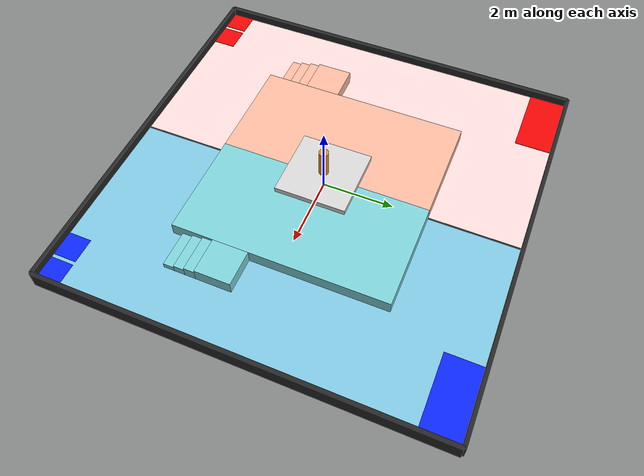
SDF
<sdf version="1.9">
 <world name="robocon_test_field">
  <gravity>0 0 -9.81</gravity>
  <physics name="default_physics" type="ode">
   <max_step_size>0.001</max_step_size>
   <real_time_factor>1.0</real_time_factor>
   <real_time_update_rate>1000</real_time_update_rate>
  </physics>
  <plugin filename="gz-sim-physics-system" name="gz::sim::systems::Physics"/>
  <plugin filename="gz-sim-user-commands-system" name="gz::sim::systems::UserCommands"/>
  <plugin filename="gz-sim-scene-broadcaster-system" name="gz::sim::systems::SceneBroadcaster"/>
  <plugin filename="gz-sim-sensors-system" name="gz::sim::systems::Sensors">
   <render_engine>ogre2</render_engine>
  </plugin>
  <light name="sun" type="directional">
   <pose>0 0 10 0 0 0</pose>
   <diffuse>0.8 0.8 0.8 1</diffuse>
   <specular>0.2 0.2 0.2 1</specular>
   <direction>-0.5 0.5 -1</direction>
  </light>
  <model name="pink_half">
   <static>true</static>
   <pose>-2.75 0 -0.05 0 0 0</pose>
   <link name="pink_floor">
    <collision name="pink_collision"><geometry><box><size>5.5 11 0.1</size></box></geometry></collision>
    <visual name="pink_visual">
     <geometry><box><size>5.5 11 0.1</size></box></geometry>
     <material>
      <ambient>0.996 0.875 0.867 1</ambient>
      <diffuse>0.996 0.875 0.867 1</diffuse>
      <specular>0.05 0.05 0.05 1</specular>
     </material>
    </visual>
   </link>
  </model>
  <model name="blue_half">
   <static>true</static>
   <pose>2.75 0 -0.05 0 0 0</pose>
   <link name="blue_floor">
    <collision name="blue_collision"><geometry><box><size>5.5 11 0.1</size></box></geometry></collision>
    <visual name="blue_visual">
     <geometry><box><size>5.5 11 0.1</size></box></geometry>
     <material>
      <ambient>0.510 0.792 0.898 1</ambient>
      <diffuse>0.510 0.792 0.898 1</diffuse>
      <specular>0.05 0.05 0.05 1</specular>
     </material>
    </visual>
   </link>
  </model>
  <model name="center_line">
   <static>true</static>
   <pose>0 0 0.006 0 0 0</pose>
   <link name="center_line_link">
    <visual name="center_line_visual">
     <geometry><box><size>0.04 11 0.012</size></box></geometry>
     <material><ambient>0.05 0.05 0.05 1</ambient><diffuse>0.05 0.05 0.05 1</diffuse></material>
    </visual>
   </link>
  </model>
  <model name="red_corner_zone">
   <static>true</static>
   <pose>-4.5 5.0 0.012 0 0 0</pose>
   <link name="red_corner_link">
    <visual name="red_corner_visual">
     <geometry><box><size>2.0 1.0 0.012</size></box></geometry>
     <material>
      <ambient>0.95 0.02 0.02 1</ambient>
      <diffuse>0.95 0.02 0.02 1</diffuse>
      <specular>0.05 0.05 0.05 1</specular>
     </material>
    </visual>
   </link>
  </model>
  <model name="red_cornerbotr1_zone">
   <static>true</static>
   <pose>-5.2 -5.2 0.012 0 0 0</pose>
   <link name="red_cornerbotr1_link">
    <visual name="red_cornerbotr1_visual">
     <geometry><box><size>0.7 0.7 0.012</size></box></geometry>
     <material>
      <ambient>0.95 0.02 0.02 1</ambient>
      <diffuse>0.95 0.02 0.02 1</diffuse>
      <specular>0.05 0.05 0.05 1</specular>
     </material>
    </visual>
   </link>
  </model>
  <model name="red_cornerbotr2_zone">
   <static>true</static>
   <pose>-4.4 -5.2 0.012 0 0 0</pose>
   <link name="red_cornerbotr2_link">
    <visual name="red_cornerbotr2_visual">
     <geometry><box><size>0.7 0.7 0.012</size></box></geometry>
     <material>
      <ambient>0.95 0.02 0.02 1</ambient>
      <diffuse>0.95 0.02 0.02 1</diffuse>
      <specular>0.05 0.05 0.05 1</specular>
     </material>
    </visual>
   </link>
  </model>
  <model name="blue_corner_zone">
   <static>true</static>
   <pose>4.5 5.0 0.012 0 0 0</pose>
   <link name="blue_corner_link">
    <visual name="blue_corner_visual">
     <geometry><box><size>2.0 1.0 0.012</size></box></geometry>
     <material>
      <ambient>0.05 0.15 1.0 1</ambient>
      <diffuse>0.05 0.15 1.0 1</diffuse>
      <specular>0.05 0.05 0.05 1</specular>
     </material>
    </visual>
   </link>
  </model>
  <model name="blue_cornerbotr1_zone">
   <static>true</static>
   <pose>5.2 -5.2 0.012 0 0 0</pose>
   <link name="blue_cornerbotr1_link">
    <visual name="blue_cornerbotr1_visual">
     <geometry><box><size>0.7 0.7 0.012</size></box></geometry>
     <material>
      <ambient>0.05 0.15 1.0 1</ambient>
      <diffuse>0.05 0.15 1.0 1</diffuse>
      <specular>0.05 0.05 0.05 1</specular>
     </material>
    </visual>
   </link>
  </model>
  <model name="blue_cornerbotr2_zone">
   <static>true</static>
   <pose>4.4 -5.2 0.012 0 0 0</pose>
   <link name="blue_cornerbotr2_link">
    <visual name="blue_cornerbotr2_visual">
     <geometry><box><size>0.7 0.7 0.012</size></box></geometry>
     <material>
      <ambient>0.05 0.15 1.0 1</ambient>
      <diffuse>0.05 0.15 1.0 1</diffuse>
      <specular>0.05 0.05 0.05 1</specular>
     </material>
    </visual>
   </link>
  </model>
  <model name="left_wall">
   <static>true</static>
   <pose>-5.55 0 0.01 0 0 0</pose>
   <link name="wall_link">
    <collision name="collision"><geometry><box><size>0.1 11.1 0.5</size></box></geometry></collision>
    <visual name="visual">
     <geometry><box><size>0.1 11.1 0.5</size></box></geometry>
     <material><ambient>0.15 0.15 0.15 1</ambient><diffuse>0.15 0.15 0.15 1</diffuse></material>
    </visual>
   </link>
  </model>
  <model name="right_wall">
   <static>true</static>
   <pose>5.55 0 0.01 0 0 0</pose>
   <link name="wall_link">
    <collision name="collision"><geometry><box><size>0.1 11.1 0.5</size></box></geometry></collision>
    <visual name="visual">
     <geometry><box><size>0.1 11.1 0.5</size></box></geometry>
     <material><ambient>0.15 0.15 0.15 1</ambient><diffuse>0.15 0.15 0.15 1</diffuse></material>
    </visual>
   </link>
  </model>
  <model name="front_wall">
   <static>true</static>
   <pose>0 -5.55 0.01 0 0 0</pose>
   <link name="wall_link">
    <collision name="collision"><geometry><box><size>11.1 0.1 0.5</size></box></geometry></collision>
    <visual name="visual">
     <geometry><box><size>11.1 0.1 0.5</size></box></geometry>
     <material><ambient>0.15 0.15 0.15 1</ambient><diffuse>0.15 0.15 0.15 1</diffuse></material>
    </visual>
   </link>
  </model>
  <model name="back_wall">
   <static>true</static>
   <pose>0 5.55 0.01 0 0 0</pose>
   <link name="wall_link">
    <collision name="collision"><geometry><box><size>11.1 0.1 0.5</size></box></geometry></collision>
    <visual name="visual">
     <geometry><box><size>11.1 0.1 0.5</size></box></geometry>
     <material><ambient>0.15 0.15 0.15 1</ambient><diffuse>0.15 0.15 0.15 1</diffuse></material>
    </visual>
   </link>
  </model>
  <model name="terrace_platform_pink">
   <static>true</static>
   <pose>-1.5 0 0.075 0 0 0</pose>
   <link name="link">
    <collision name="collision"><geometry><box><size>3 6.0 0.6</size></box></geometry></collision>
    <visual name="visual">
     <geometry><box><size>3 6.0 0.6</size></box></geometry>
     <material>
      <ambient>1.0 0.737 0.635 1</ambient>
      <diffuse>1.0 0.737 0.635 1</diffuse>
      <specular>0.05 0.05 0.05 1</specular>
     </material>
    </visual>
   </link>
  </model>
  <model name="terrace_platform_blue">
   <static>true</static>
   <pose>1.5 0 0.075 0 0 0</pose>
   <link name="link">
    <collision name="collision"><geometry><box><size>3 6.0 0.6</size></box></geometry></collision>
    <visual name="visual">
     <geometry><box><size>3 6.0 0.6</size></box></geometry>
     <material>
      <ambient>0.498 0.835 0.855 1</ambient>
      <diffuse>0.498 0.835 0.855 1</diffuse>
      <specular>0.05 0.05 0.05 1</specular>
     </material>
    </visual>
   </link>
  </model>
  <model name="central_high_platform">
   <static>true</static>
   <pose>0 0 0.46 0 0 0</pose>
   <link name="link">
    <collision name="collision"><geometry><box><size>2.0 2.0 0.15</size></box></geometry></collision>
    <visual name="visual">
     <geometry><box><size>2.0 2.0 0.15</size></box></geometry>
     <material><ambient>0.80 0.80 0.80 1</ambient><diffuse>0.85 0.85 0.85 1</diffuse></material>
    </visual>
   </link>
  </model>
  <model name="center_pole">
   <static>true</static>
   <pose>0 0 0.94 0 0 0</pose>
   <link name="link">
    <collision name="collision">
     <geometry><cylinder><radius>0.135</radius><length>0.80</length></cylinder></geometry>
    </collision>
    <visual name="visual">
     <geometry><cylinder><radius>0.135</radius><length>0.80</length></cylinder></geometry>
     <material><ambient>0.75 0.50 0.10 1</ambient><diffuse>0.85 0.55 0.15 1</diffuse></material>
    </visual>
   </link>
  </model>
  <model name="terrace_platform_stair">
   <static>true</static>
   <pose>-3.5 -1.3 0.075 0 0 0</pose>
   <link name="link">
    <collision name="collision"><geometry><box><size>1 1.0 0.6</size></box></geometry></collision>
    <visual name="visual">
     <geometry><box><size>1 1.0 0.6</size></box></geometry>
     <material>
      <ambient>1.0 0.737 0.635 1</ambient>
      <diffuse>1.0 0.737 0.635 1</diffuse>
      <specular>0.05 0.05 0.05 1</specular>
     </material>
    </visual>
   </link>
  </model>
  <model name="terrace_platform_stair1">
   <static>true</static>
   <pose>-3.5 -1.95 0.075 0 0 0</pose>
   <link name="link">
    <collision name="collision"><geometry><box><size>1 0.3 0.45</size></box></geometry></collision>
    <visual name="visual">
     <geometry><box><size>1 0.3 0.45</size></box></geometry>
     <material>
      <ambient>1.0 0.737 0.635 1</ambient>
      <diffuse>1.0 0.737 0.635 1</diffuse>
      <specular>0.05 0.05 0.05 1</specular>
     </material>
    </visual>
   </link>
  </model>
  <model name="terrace_platform_stair2">
   <static>true</static>
   <pose>-3.5 -2.25 0.075 0 0 0</pose>
   <link name="link">
    <collision name="collision"><geometry><box><size>1 0.3 0.3</size></box></geometry></collision>
    <visual name="visual">
     <geometry><box><size>1 0.3 0.3</size></box></geometry>
     <material>
      <ambient>1.0 0.737 0.635 1</ambient>
      <diffuse>1.0 0.737 0.635 1</diffuse>
      <specular>0.05 0.05 0.05 1</specular>
     </material>
    </visual>
   </link>
  </model>
  <model name="terrace_platform_stair3">
   <static>true</static>
   <pose>-3.5 -2.55 0.075 0 0 0</pose>
   <link name="link">
    <collision name="collision"><geometry><box><size>1 0.3 0.15</size></box></geometry></collision>
    <visual name="visual">
     <geometry><box><size>1 0.3 0.15</size></box></geometry>
     <material>
      <ambient>1.0 0.737 0.635 1</ambient>
      <diffuse>1.0 0.737 0.635 1</diffuse>
      <specular>0.05 0.05 0.05 1</specular>
     </material>
    </visual>
   </link>
  </model>
  <model name="terrace_platform_stair_blue">
   <static>true</static>
   <pose>3.5 -1.3 0.075 0 0 0</pose>
   <link name="link">
    <collision name="collision"><geometry><box><size>1 1.0 0.6</size></box></geometry></collision>
    <visual name="visual">
     <geometry><box><size>1 1.0 0.6</size></box></geometry>
     <material>
      <ambient>0.498 0.835 0.855 1</ambient>
      <diffuse>0.498 0.835 0.855 1</diffuse>
      <specular>0.05 0.05 0.05 1</specular>
     </material>
    </visual>
   </link>
  </model>
  <model name="terrace_platform_stair1_blue">
   <static>true</static>
   <pose>3.5 -1.95 0.075 0 0 0</pose>
   <link name="link">
    <collision name="collision"><geometry><box><size>1 0.3 0.45</size></box></geometry></collision>
    <visual name="visual">
     <geometry><box><size>1 0.3 0.45</size></box></geometry>
     <material>
      <ambient>0.498 0.835 0.855 1</ambient>
      <diffuse>0.498 0.835 0.855 1</diffuse>
      <specular>0.05 0.05 0.05 1</specular>
     </material>
    </visual>
   </link>
  </model>
  <model name="terrace_platform_stair2_blue">
   <static>true</static>
   <pose>3.5 -2.25 0.075 0 0 0</pose>
   <link name="link">
    <collision name="collision"><geometry><box><size>1 0.3 0.3</size></box></geometry></collision>
    <visual name="visual">
     <geometry><box><size>1 0.3 0.3</size></box></geometry>
     <material>
      <ambient>0.498 0.835 0.855 1</ambient>
      <diffuse>0.498 0.835 0.855 1</diffuse>
      <specular>0.05 0.05 0.05 1</specular>
     </material>
    </visual>
   </link>
  </model>
  <model name="terrace_platform_stair3_blue">
   <static>true</static>
   <pose>3.5 -2.55 0.075 0 0 0</pose>
   <link name="link">
    <collision name="collision"><geometry><box><size>1 0.3 0.15</size></box></geometry></collision>
    <visual name="visual">
     <geometry><box><size>1 0.3 0.15</size></box></geometry>
     <material>
      <ambient>0.498 0.835 0.855 1</ambient>
      <diffuse>0.498 0.835 0.855 1</diffuse>
      <specular>0.05 0.05 0.05 1</specular>
     </material>
    </visual>
   </link>
  </model>
 </world>
</sdf>
